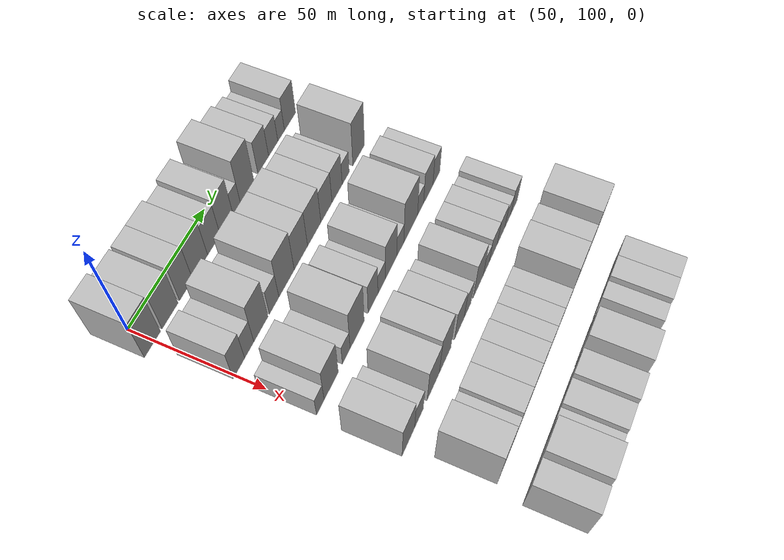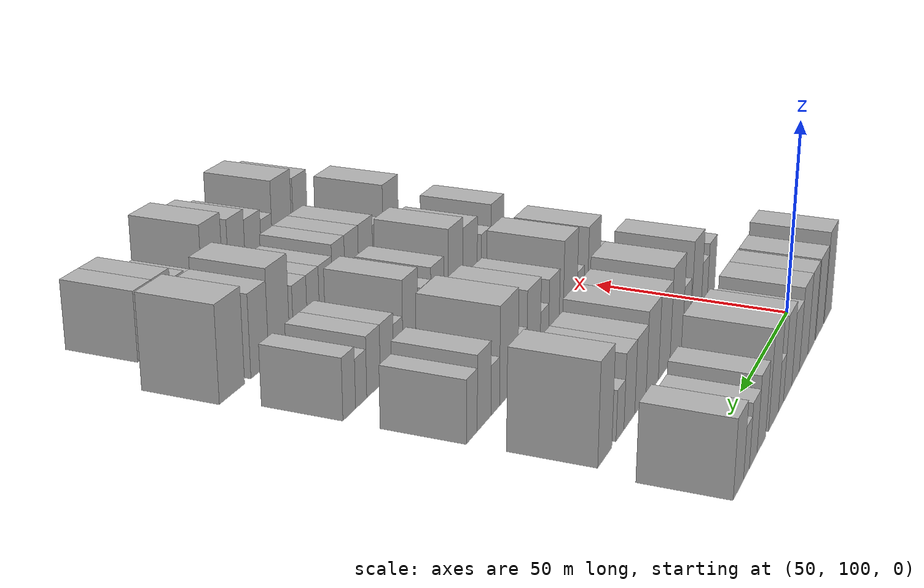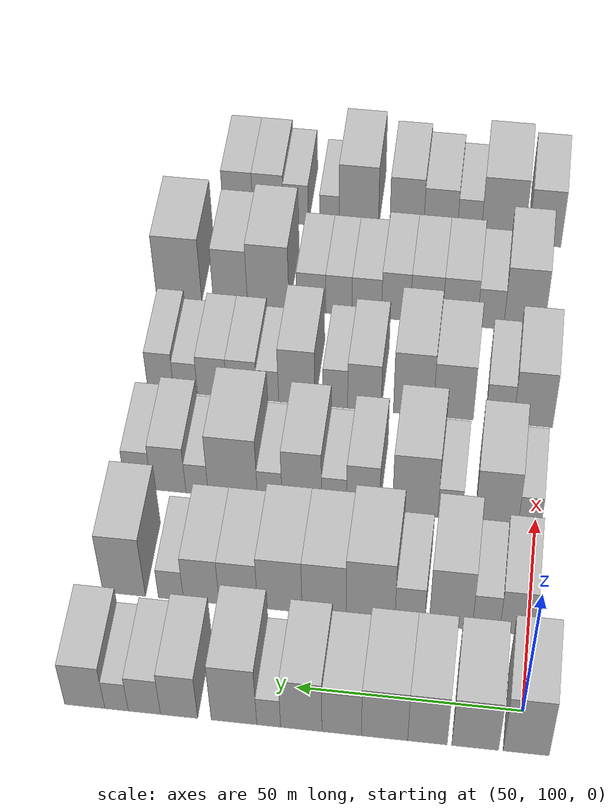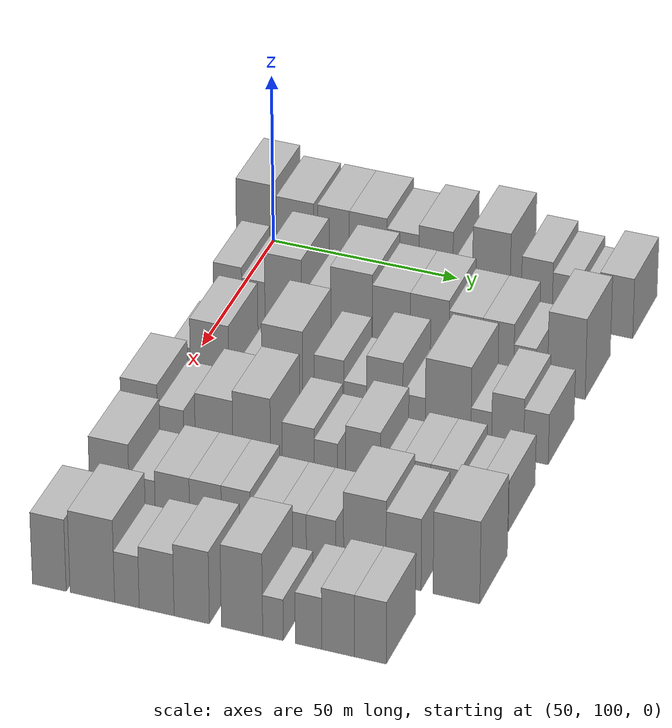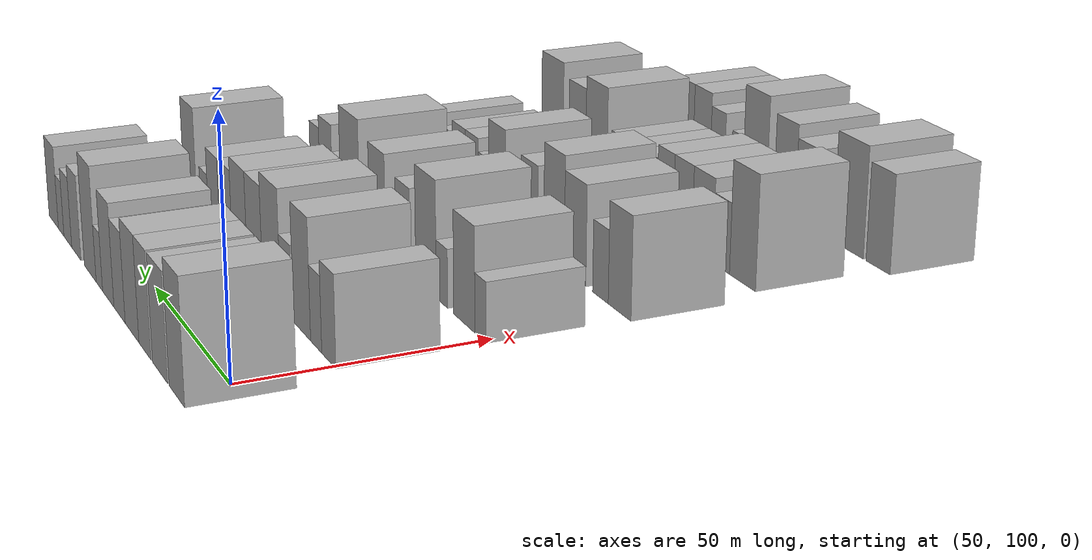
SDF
<sdf version="1.6">
 <world name="default">
  <model name="building_67">
   <static>1</static>
   <pose>50.0000 98.7237 0 0.000000 0.000000 0.000000</pose>
   <link name="link">
    <pose>0 0 12.00 0 0 0</pose>
    <collision name="collision"><geometry><box><size>20.0000 9.9362 24.0000</size></box></geometry></collision>
    <visual name="visual">
     <cast_shadows>0</cast_shadows>
     <geometry><box><size>20.0000 9.9362 24.0000</size></box></geometry>
     <material>
      <script>
       <uri>model://HANNAS_wall/materials/scripts</uri>
       <uri>model://HANNAS_wall/materials/textures</uri>
       <name>vrc/HANNAS_wall</name>
      </script>
     </material>
    </visual>
   </link>
  </model>
  <model name="building_68">
   <static>1</static>
   <pose>50.0000 109.7619 0 0.000000 0.000000 0.000000</pose>
   <link name="link">
    <pose>0 0 10.50 0 0 0</pose>
    <collision name="collision"><geometry><box><size>20.0000 10.1403 21.0000</size></box></geometry></collision>
    <visual name="visual">
     <cast_shadows>0</cast_shadows>
     <geometry><box><size>20.0000 10.1403 21.0000</size></box></geometry>
     <material>
      <script>
       <uri>model://HANNAS_wall/materials/scripts</uri>
       <uri>model://HANNAS_wall/materials/textures</uri>
       <name>vrc/HANNAS_wall</name>
      </script>
     </material>
    </visual>
   </link>
  </model>
  <model name="building_69">
   <static>1</static>
   <pose>50.0000 120.1276 0 0.000000 0.000000 0.000000</pose>
   <link name="link">
    <pose>0 0 10.50 0 0 0</pose>
    <collision name="collision"><geometry><box><size>20.0000 8.5910 21.0000</size></box></geometry></collision>
    <visual name="visual">
     <cast_shadows>0</cast_shadows>
     <geometry><box><size>20.0000 8.5910 21.0000</size></box></geometry>
     <material>
      <script>
       <uri>model://HANNAS_wall/materials/scripts</uri>
       <uri>model://HANNAS_wall/materials/textures</uri>
       <name>vrc/HANNAS_wall</name>
      </script>
     </material>
    </visual>
   </link>
  </model>
  <model name="building_70">
   <static>1</static>
   <pose>50.0000 129.4822 0 0.000000 0.000000 0.000000</pose>
   <link name="link">
    <pose>0 0 10.50 0 0 0</pose>
    <collision name="collision"><geometry><box><size>20.0000 10.1182 21.0000</size></box></geometry></collision>
    <visual name="visual">
     <cast_shadows>0</cast_shadows>
     <geometry><box><size>20.0000 10.1182 21.0000</size></box></geometry>
     <material>
      <script>
       <uri>model://HANNAS_wall/materials/scripts</uri>
       <uri>model://HANNAS_wall/materials/textures</uri>
       <name>vrc/HANNAS_wall</name>
      </script>
     </material>
    </visual>
   </link>
  </model>
  <model name="building_71">
   <static>1</static>
   <pose>50.0000 138.8478 0 0.000000 0.000000 0.000000</pose>
   <link name="link">
    <pose>0 0 9.00 0 0 0</pose>
    <collision name="collision"><geometry><box><size>20.0000 8.6132 18.0000</size></box></geometry></collision>
    <visual name="visual">
     <cast_shadows>0</cast_shadows>
     <geometry><box><size>20.0000 8.6132 18.0000</size></box></geometry>
     <material>
      <script>
       <uri>model://HANNAS_wall/materials/scripts</uri>
       <uri>model://HANNAS_wall/materials/textures</uri>
       <name>vrc/HANNAS_wall</name>
      </script>
     </material>
    </visual>
   </link>
  </model>
  <model name="building_72">
   <static>1</static>
   <pose>50.0000 147.6921 0 0.000000 0.000000 0.000000</pose>
   <link name="link">
    <pose>0 0 10.50 0 0 0</pose>
    <collision name="collision"><geometry><box><size>20.0000 9.0753 21.0000</size></box></geometry></collision>
    <visual name="visual">
     <cast_shadows>0</cast_shadows>
     <geometry><box><size>20.0000 9.0753 21.0000</size></box></geometry>
     <material>
      <script>
       <uri>model://HANNAS_wall/materials/scripts</uri>
       <uri>model://HANNAS_wall/materials/textures</uri>
       <name>vrc/HANNAS_wall</name>
      </script>
     </material>
    </visual>
   </link>
  </model>
  <model name="building_73">
   <static>1</static>
   <pose>50.0000 154.8513 0 0.000000 0.000000 0.000000</pose>
   <link name="link">
    <pose>0 0 6.00 0 0 0</pose>
    <collision name="collision"><geometry><box><size>20.0000 5.2431 12.0000</size></box></geometry></collision>
    <visual name="visual">
     <cast_shadows>0</cast_shadows>
     <geometry><box><size>20.0000 5.2431 12.0000</size></box></geometry>
     <material>
      <script>
       <uri>model://HANNAS_wall/materials/scripts</uri>
       <uri>model://HANNAS_wall/materials/textures</uri>
       <name>vrc/HANNAS_wall</name>
      </script>
     </material>
    </visual>
   </link>
  </model>
  <model name="building_74">
   <static>1</static>
   <pose>50.0000 162.4945 0 0.000000 0.000000 0.000000</pose>
   <link name="link">
    <pose>0 0 12.00 0 0 0</pose>
    <collision name="collision"><geometry><box><size>20.0000 10.0434 24.0000</size></box></geometry></collision>
    <visual name="visual">
     <cast_shadows>0</cast_shadows>
     <geometry><box><size>20.0000 10.0434 24.0000</size></box></geometry>
     <material>
      <script>
       <uri>model://HANNAS_wall/materials/scripts</uri>
       <uri>model://HANNAS_wall/materials/textures</uri>
       <name>vrc/HANNAS_wall</name>
      </script>
     </material>
    </visual>
   </link>
  </model>
  <model name="building_75">
   <static>1</static>
   <pose>50.0000 174.6314 0 0.000000 0.000000 0.000000</pose>
   <link name="link">
    <pose>0 0 9.00 0 0 0</pose>
    <collision name="collision"><geometry><box><size>20.0000 8.2305 18.0000</size></box></geometry></collision>
    <visual name="visual">
     <cast_shadows>0</cast_shadows>
     <geometry><box><size>20.0000 8.2305 18.0000</size></box></geometry>
     <material>
      <script>
       <uri>model://HANNAS_wall/materials/scripts</uri>
       <uri>model://HANNAS_wall/materials/textures</uri>
       <name>vrc/HANNAS_wall</name>
      </script>
     </material>
    </visual>
   </link>
  </model>
  <model name="building_76">
   <static>1</static>
   <pose>50.0000 182.3209 0 0.000000 0.000000 0.000000</pose>
   <link name="link">
    <pose>0 0 7.50 0 0 0</pose>
    <collision name="collision"><geometry><box><size>20.0000 7.1485 15.0000</size></box></geometry></collision>
    <visual name="visual">
     <cast_shadows>0</cast_shadows>
     <geometry><box><size>20.0000 7.1485 15.0000</size></box></geometry>
     <material>
      <script>
       <uri>model://HANNAS_wall/materials/scripts</uri>
       <uri>model://HANNAS_wall/materials/textures</uri>
       <name>vrc/HANNAS_wall</name>
      </script>
     </material>
    </visual>
   </link>
  </model>
  <model name="building_77">
   <static>1</static>
   <pose>50.0000 188.5051 0 0.000000 0.000000 0.000000</pose>
   <link name="link">
    <pose>0 0 6.00 0 0 0</pose>
    <collision name="collision"><geometry><box><size>20.0000 5.2199 12.0000</size></box></geometry></collision>
    <visual name="visual">
     <cast_shadows>0</cast_shadows>
     <geometry><box><size>20.0000 5.2199 12.0000</size></box></geometry>
     <material>
      <script>
       <uri>model://HANNAS_wall/materials/scripts</uri>
       <uri>model://HANNAS_wall/materials/textures</uri>
       <name>vrc/HANNAS_wall</name>
      </script>
     </material>
    </visual>
   </link>
  </model>
  <model name="building_78">
   <static>1</static>
   <pose>50.0000 195.5832 0 0.000000 0.000000 0.000000</pose>
   <link name="link">
    <pose>0 0 9.00 0 0 0</pose>
    <collision name="collision"><geometry><box><size>20.0000 8.9364 18.0000</size></box></geometry></collision>
    <visual name="visual">
     <cast_shadows>0</cast_shadows>
     <geometry><box><size>20.0000 8.9364 18.0000</size></box></geometry>
     <material>
      <script>
       <uri>model://HANNAS_wall/materials/scripts</uri>
       <uri>model://HANNAS_wall/materials/textures</uri>
       <name>vrc/HANNAS_wall</name>
      </script>
     </material>
    </visual>
   </link>
  </model>
  <model name="building_178">
   <static>1</static>
   <pose>79.0000 102.6184 0 0.000000 0.000000 0.000000</pose>
   <link name="link">
    <pose>0 0 9.00 0 0 0</pose>
    <collision name="collision"><geometry><box><size>20.0000 7.6009 18.0000</size></box></geometry></collision>
    <visual name="visual">
     <cast_shadows>0</cast_shadows>
     <geometry><box><size>20.0000 7.6009 18.0000</size></box></geometry>
     <material>
      <script>
       <uri>model://HANNAS_wall/materials/scripts</uri>
       <uri>model://HANNAS_wall/materials/textures</uri>
       <name>vrc/HANNAS_wall</name>
      </script>
     </material>
    </visual>
   </link>
  </model>
  <model name="building_179">
   <static>1</static>
   <pose>79.0000 109.5128 0 0.000000 0.000000 0.000000</pose>
   <link name="link">
    <pose>0 0 7.50 0 0 0</pose>
    <collision name="collision"><geometry><box><size>20.0000 6.1878 15.0000</size></box></geometry></collision>
    <visual name="visual">
     <cast_shadows>0</cast_shadows>
     <geometry><box><size>20.0000 6.1878 15.0000</size></box></geometry>
     <material>
      <script>
       <uri>model://HANNAS_wall/materials/scripts</uri>
       <uri>model://HANNAS_wall/materials/textures</uri>
       <name>vrc/HANNAS_wall</name>
      </script>
     </material>
    </visual>
   </link>
  </model>
  <model name="building_180">
   <static>1</static>
   <pose>79.0000 117.4778 0 0.000000 0.000000 0.000000</pose>
   <link name="link">
    <pose>0 0 12.00 0 0 0</pose>
    <collision name="collision"><geometry><box><size>20.0000 9.7422 24.0000</size></box></geometry></collision>
    <visual name="visual">
     <cast_shadows>0</cast_shadows>
     <geometry><box><size>20.0000 9.7422 24.0000</size></box></geometry>
     <material>
      <script>
       <uri>model://HANNAS_wall/materials/scripts</uri>
       <uri>model://HANNAS_wall/materials/textures</uri>
       <name>vrc/HANNAS_wall</name>
      </script>
     </material>
    </visual>
   </link>
  </model>
  <model name="building_181">
   <static>1</static>
   <pose>79.0000 126.7188 0 0.000000 0.000000 0.000000</pose>
   <link name="link">
    <pose>0 0 7.50 0 0 0</pose>
    <collision name="collision"><geometry><box><size>20.0000 6.7398 15.0000</size></box></geometry></collision>
    <visual name="visual">
     <cast_shadows>0</cast_shadows>
     <geometry><box><size>20.0000 6.7398 15.0000</size></box></geometry>
     <material>
      <script>
       <uri>model://HANNAS_wall/materials/scripts</uri>
       <uri>model://HANNAS_wall/materials/textures</uri>
       <name>vrc/HANNAS_wall</name>
      </script>
     </material>
    </visual>
   </link>
  </model>
  <model name="building_182">
   <static>1</static>
   <pose>79.0000 135.6520 0 0.000000 0.000000 0.000000</pose>
   <link name="link">
    <pose>0 0 12.00 0 0 0</pose>
    <collision name="collision"><geometry><box><size>20.0000 11.1267 24.0000</size></box></geometry></collision>
    <visual name="visual">
     <cast_shadows>0</cast_shadows>
     <geometry><box><size>20.0000 11.1267 24.0000</size></box></geometry>
     <material>
      <script>
       <uri>model://HANNAS_wall/materials/scripts</uri>
       <uri>model://HANNAS_wall/materials/textures</uri>
       <name>vrc/HANNAS_wall</name>
      </script>
     </material>
    </visual>
   </link>
  </model>
  <model name="building_183">
   <static>1</static>
   <pose>79.0000 146.2065 0 0.000000 0.000000 0.000000</pose>
   <link name="link">
    <pose>0 0 10.50 0 0 0</pose>
    <collision name="collision"><geometry><box><size>20.0000 9.9822 21.0000</size></box></geometry></collision>
    <visual name="visual">
     <cast_shadows>0</cast_shadows>
     <geometry><box><size>20.0000 9.9822 21.0000</size></box></geometry>
     <material>
      <script>
       <uri>model://HANNAS_wall/materials/scripts</uri>
       <uri>model://HANNAS_wall/materials/textures</uri>
       <name>vrc/HANNAS_wall</name>
      </script>
     </material>
    </visual>
   </link>
  </model>
  <model name="building_184">
   <static>1</static>
   <pose>79.0000 156.3046 0 0.000000 0.000000 0.000000</pose>
   <link name="link">
    <pose>0 0 10.50 0 0 0</pose>
    <collision name="collision"><geometry><box><size>20.0000 10.2140 21.0000</size></box></geometry></collision>
    <visual name="visual">
     <cast_shadows>0</cast_shadows>
     <geometry><box><size>20.0000 10.2140 21.0000</size></box></geometry>
     <material>
      <script>
       <uri>model://HANNAS_wall/materials/scripts</uri>
       <uri>model://HANNAS_wall/materials/textures</uri>
       <name>vrc/HANNAS_wall</name>
      </script>
     </material>
    </visual>
   </link>
  </model>
  <model name="building_185">
   <static>1</static>
   <pose>79.0000 165.8202 0 0.000000 0.000000 0.000000</pose>
   <link name="link">
    <pose>0 0 9.00 0 0 0</pose>
    <collision name="collision"><geometry><box><size>20.0000 8.8171 18.0000</size></box></geometry></collision>
    <visual name="visual">
     <cast_shadows>0</cast_shadows>
     <geometry><box><size>20.0000 8.8171 18.0000</size></box></geometry>
     <material>
      <script>
       <uri>model://HANNAS_wall/materials/scripts</uri>
       <uri>model://HANNAS_wall/materials/textures</uri>
       <name>vrc/HANNAS_wall</name>
      </script>
     </material>
    </visual>
   </link>
  </model>
  <model name="building_186">
   <static>1</static>
   <pose>79.0000 174.3302 0 0.000000 0.000000 0.000000</pose>
   <link name="link">
    <pose>0 0 9.00 0 0 0</pose>
    <collision name="collision"><geometry><box><size>20.0000 8.2030 18.0000</size></box></geometry></collision>
    <visual name="visual">
     <cast_shadows>0</cast_shadows>
     <geometry><box><size>20.0000 8.2030 18.0000</size></box></geometry>
     <material>
      <script>
       <uri>model://HANNAS_wall/materials/scripts</uri>
       <uri>model://HANNAS_wall/materials/textures</uri>
       <name>vrc/HANNAS_wall</name>
      </script>
     </material>
    </visual>
   </link>
  </model>
  <model name="building_187">
   <static>1</static>
   <pose>79.0000 181.3308 0 0.000000 0.000000 0.000000</pose>
   <link name="link">
    <pose>0 0 6.00 0 0 0</pose>
    <collision name="collision"><geometry><box><size>20.0000 5.7981 12.0000</size></box></geometry></collision>
    <visual name="visual">
     <cast_shadows>0</cast_shadows>
     <geometry><box><size>20.0000 5.7981 12.0000</size></box></geometry>
     <material>
      <script>
       <uri>model://HANNAS_wall/materials/scripts</uri>
       <uri>model://HANNAS_wall/materials/textures</uri>
       <name>vrc/HANNAS_wall</name>
      </script>
     </material>
    </visual>
   </link>
  </model>
  <model name="building_188">
   <static>1</static>
   <pose>79.0000 192.1509 0 0.000000 0.000000 0.000000</pose>
   <link name="link">
    <pose>0 0 12.00 0 0 0</pose>
    <collision name="collision"><geometry><box><size>20.0000 9.8422 24.0000</size></box></geometry></collision>
    <visual name="visual">
     <cast_shadows>0</cast_shadows>
     <geometry><box><size>20.0000 9.8422 24.0000</size></box></geometry>
     <material>
      <script>
       <uri>model://HANNAS_wall/materials/scripts</uri>
       <uri>model://HANNAS_wall/materials/textures</uri>
       <name>vrc/HANNAS_wall</name>
      </script>
     </material>
    </visual>
   </link>
  </model>
  <model name="building_292">
   <static>1</static>
   <pose>108.0000 101.3259 0 0.000000 0.000000 0.000000</pose>
   <link name="link">
    <pose>0 0 6.00 0 0 0</pose>
    <collision name="collision"><geometry><box><size>20.0000 5.3046 12.0000</size></box></geometry></collision>
    <visual name="visual">
     <cast_shadows>0</cast_shadows>
     <geometry><box><size>20.0000 5.3046 12.0000</size></box></geometry>
     <material>
      <script>
       <uri>model://HANNAS_wall/materials/scripts</uri>
       <uri>model://HANNAS_wall/materials/textures</uri>
       <name>vrc/HANNAS_wall</name>
      </script>
     </material>
    </visual>
   </link>
  </model>
  <model name="building_293">
   <static>1</static>
   <pose>108.0000 109.0631 0 0.000000 0.000000 0.000000</pose>
   <link name="link">
    <pose>0 0 10.50 0 0 0</pose>
    <collision name="collision"><geometry><box><size>20.0000 10.1699 21.0000</size></box></geometry></collision>
    <visual name="visual">
     <cast_shadows>0</cast_shadows>
     <geometry><box><size>20.0000 10.1699 21.0000</size></box></geometry>
     <material>
      <script>
       <uri>model://HANNAS_wall/materials/scripts</uri>
       <uri>model://HANNAS_wall/materials/textures</uri>
       <name>vrc/HANNAS_wall</name>
      </script>
     </material>
    </visual>
   </link>
  </model>
  <model name="building_294">
   <static>1</static>
   <pose>108.0000 120.0068 0 0.000000 0.000000 0.000000</pose>
   <link name="link">
    <pose>0 0 6.00 0 0 0</pose>
    <collision name="collision"><geometry><box><size>20.0000 5.7175 12.0000</size></box></geometry></collision>
    <visual name="visual">
     <cast_shadows>0</cast_shadows>
     <geometry><box><size>20.0000 5.7175 12.0000</size></box></geometry>
     <material>
      <script>
       <uri>model://HANNAS_wall/materials/scripts</uri>
       <uri>model://HANNAS_wall/materials/textures</uri>
       <name>vrc/HANNAS_wall</name>
      </script>
     </material>
    </visual>
   </link>
  </model>
  <model name="building_295">
   <static>1</static>
   <pose>108.0000 128.2154 0 0.000000 0.000000 0.000000</pose>
   <link name="link">
    <pose>0 0 12.00 0 0 0</pose>
    <collision name="collision"><geometry><box><size>20.0000 10.6997 24.0000</size></box></geometry></collision>
    <visual name="visual">
     <cast_shadows>0</cast_shadows>
     <geometry><box><size>20.0000 10.6997 24.0000</size></box></geometry>
     <material>
      <script>
       <uri>model://HANNAS_wall/materials/scripts</uri>
       <uri>model://HANNAS_wall/materials/textures</uri>
       <name>vrc/HANNAS_wall</name>
      </script>
     </material>
    </visual>
   </link>
  </model>
  <model name="building_296">
   <static>1</static>
   <pose>108.0000 140.4504 0 0.000000 0.000000 0.000000</pose>
   <link name="link">
    <pose>0 0 9.00 0 0 0</pose>
    <collision name="collision"><geometry><box><size>20.0000 7.7704 18.0000</size></box></geometry></collision>
    <visual name="visual">
     <cast_shadows>0</cast_shadows>
     <geometry><box><size>20.0000 7.7704 18.0000</size></box></geometry>
     <material>
      <script>
       <uri>model://HANNAS_wall/materials/scripts</uri>
       <uri>model://HANNAS_wall/materials/textures</uri>
       <name>vrc/HANNAS_wall</name>
      </script>
     </material>
    </visual>
   </link>
  </model>
  <model name="building_297">
   <static>1</static>
   <pose>108.0000 147.3112 0 0.000000 0.000000 0.000000</pose>
   <link name="link">
    <pose>0 0 6.00 0 0 0</pose>
    <collision name="collision"><geometry><box><size>20.0000 5.9511 12.0000</size></box></geometry></collision>
    <visual name="visual">
     <cast_shadows>0</cast_shadows>
     <geometry><box><size>20.0000 5.9511 12.0000</size></box></geometry>
     <material>
      <script>
       <uri>model://HANNAS_wall/materials/scripts</uri>
       <uri>model://HANNAS_wall/materials/textures</uri>
       <name>vrc/HANNAS_wall</name>
      </script>
     </material>
    </visual>
   </link>
  </model>
  <model name="building_298">
   <static>1</static>
   <pose>108.0000 154.9870 0 0.000000 0.000000 0.000000</pose>
   <link name="link">
    <pose>0 0 10.50 0 0 0</pose>
    <collision name="collision"><geometry><box><size>20.0000 9.4005 21.0000</size></box></geometry></collision>
    <visual name="visual">
     <cast_shadows>0</cast_shadows>
     <geometry><box><size>20.0000 9.4005 21.0000</size></box></geometry>
     <material>
      <script>
       <uri>model://HANNAS_wall/materials/scripts</uri>
       <uri>model://HANNAS_wall/materials/textures</uri>
       <name>vrc/HANNAS_wall</name>
      </script>
     </material>
    </visual>
   </link>
  </model>
  <model name="building_299">
   <static>1</static>
   <pose>108.0000 162.6072 0 0.000000 0.000000 0.000000</pose>
   <link name="link">
    <pose>0 0 6.00 0 0 0</pose>
    <collision name="collision"><geometry><box><size>20.0000 5.8399 12.0000</size></box></geometry></collision>
    <visual name="visual">
     <cast_shadows>0</cast_shadows>
     <geometry><box><size>20.0000 5.8399 12.0000</size></box></geometry>
     <material>
      <script>
       <uri>model://HANNAS_wall/materials/scripts</uri>
       <uri>model://HANNAS_wall/materials/textures</uri>
       <name>vrc/HANNAS_wall</name>
      </script>
     </material>
    </visual>
   </link>
  </model>
  <model name="building_300">
   <static>1</static>
   <pose>108.0000 171.4204 0 0.000000 0.000000 0.000000</pose>
   <link name="link">
    <pose>0 0 12.00 0 0 0</pose>
    <collision name="collision"><geometry><box><size>20.0000 11.7866 24.0000</size></box></geometry></collision>
    <visual name="visual">
     <cast_shadows>0</cast_shadows>
     <geometry><box><size>20.0000 11.7866 24.0000</size></box></geometry>
     <material>
      <script>
       <uri>model://HANNAS_wall/materials/scripts</uri>
       <uri>model://HANNAS_wall/materials/textures</uri>
       <name>vrc/HANNAS_wall</name>
      </script>
     </material>
    </visual>
   </link>
  </model>
  <model name="building_301">
   <static>1</static>
   <pose>108.0000 179.9773 0 0.000000 0.000000 0.000000</pose>
   <link name="link">
    <pose>0 0 6.00 0 0 0</pose>
    <collision name="collision"><geometry><box><size>20.0000 5.3273 12.0000</size></box></geometry></collision>
    <visual name="visual">
     <cast_shadows>0</cast_shadows>
     <geometry><box><size>20.0000 5.3273 12.0000</size></box></geometry>
     <material>
      <script>
       <uri>model://HANNAS_wall/materials/scripts</uri>
       <uri>model://HANNAS_wall/materials/textures</uri>
       <name>vrc/HANNAS_wall</name>
      </script>
     </material>
    </visual>
   </link>
  </model>
  <model name="building_302">
   <static>1</static>
   <pose>108.0000 186.7719 0 0.000000 0.000000 0.000000</pose>
   <link name="link">
    <pose>0 0 9.00 0 0 0</pose>
    <collision name="collision"><geometry><box><size>20.0000 8.2618 18.0000</size></box></geometry></collision>
    <visual name="visual">
     <cast_shadows>0</cast_shadows>
     <geometry><box><size>20.0000 8.2618 18.0000</size></box></geometry>
     <material>
      <script>
       <uri>model://HANNAS_wall/materials/scripts</uri>
       <uri>model://HANNAS_wall/materials/textures</uri>
       <name>vrc/HANNAS_wall</name>
      </script>
     </material>
    </visual>
   </link>
  </model>
  <model name="building_303">
   <static>1</static>
   <pose>108.0000 194.0642 0 0.000000 0.000000 0.000000</pose>
   <link name="link">
    <pose>0 0 7.50 0 0 0</pose>
    <collision name="collision"><geometry><box><size>20.0000 6.3228 15.0000</size></box></geometry></collision>
    <visual name="visual">
     <cast_shadows>0</cast_shadows>
     <geometry><box><size>20.0000 6.3228 15.0000</size></box></geometry>
     <material>
      <script>
       <uri>model://HANNAS_wall/materials/scripts</uri>
       <uri>model://HANNAS_wall/materials/textures</uri>
       <name>vrc/HANNAS_wall</name>
      </script>
     </material>
    </visual>
   </link>
  </model>
  <model name="building_401">
   <static>1</static>
   <pose>137.0000 102.1666 0 0.000000 0.000000 0.000000</pose>
   <link name="link">
    <pose>0 0 10.50 0 0 0</pose>
    <collision name="collision"><geometry><box><size>20.0000 9.5321 21.0000</size></box></geometry></collision>
    <visual name="visual">
     <cast_shadows>0</cast_shadows>
     <geometry><box><size>20.0000 9.5321 21.0000</size></box></geometry>
     <material>
      <script>
       <uri>model://HANNAS_wall/materials/scripts</uri>
       <uri>model://HANNAS_wall/materials/textures</uri>
       <name>vrc/HANNAS_wall</name>
      </script>
     </material>
    </visual>
   </link>
  </model>
  <model name="building_402">
   <static>1</static>
   <pose>137.0000 110.3112 0 0.000000 0.000000 0.000000</pose>
   <link name="link">
    <pose>0 0 7.50 0 0 0</pose>
    <collision name="collision"><geometry><box><size>20.0000 6.7571 15.0000</size></box></geometry></collision>
    <visual name="visual">
     <cast_shadows>0</cast_shadows>
     <geometry><box><size>20.0000 6.7571 15.0000</size></box></geometry>
     <material>
      <script>
       <uri>model://HANNAS_wall/materials/scripts</uri>
       <uri>model://HANNAS_wall/materials/textures</uri>
       <name>vrc/HANNAS_wall</name>
      </script>
     </material>
    </visual>
   </link>
  </model>
  <model name="building_403">
   <static>1</static>
   <pose>137.0000 121.5773 0 0.000000 0.000000 0.000000</pose>
   <link name="link">
    <pose>0 0 10.50 0 0 0</pose>
    <collision name="collision"><geometry><box><size>20.0000 9.7750 21.0000</size></box></geometry></collision>
    <visual name="visual">
     <cast_shadows>0</cast_shadows>
     <geometry><box><size>20.0000 9.7750 21.0000</size></box></geometry>
     <material>
      <script>
       <uri>model://HANNAS_wall/materials/scripts</uri>
       <uri>model://HANNAS_wall/materials/textures</uri>
       <name>vrc/HANNAS_wall</name>
      </script>
     </material>
    </visual>
   </link>
  </model>
  <model name="building_404">
   <static>1</static>
   <pose>137.0000 131.3358 0 0.000000 0.000000 0.000000</pose>
   <link name="link">
    <pose>0 0 12.00 0 0 0</pose>
    <collision name="collision"><geometry><box><size>20.0000 9.7421 24.0000</size></box></geometry></collision>
    <visual name="visual">
     <cast_shadows>0</cast_shadows>
     <geometry><box><size>20.0000 9.7421 24.0000</size></box></geometry>
     <material>
      <script>
       <uri>model://HANNAS_wall/materials/scripts</uri>
       <uri>model://HANNAS_wall/materials/textures</uri>
       <name>vrc/HANNAS_wall</name>
      </script>
     </material>
    </visual>
   </link>
  </model>
  <model name="building_405">
   <static>1</static>
   <pose>137.0000 143.3232 0 0.000000 0.000000 0.000000</pose>
   <link name="link">
    <pose>0 0 9.00 0 0 0</pose>
    <collision name="collision"><geometry><box><size>20.0000 8.2328 18.0000</size></box></geometry></collision>
    <visual name="visual">
     <cast_shadows>0</cast_shadows>
     <geometry><box><size>20.0000 8.2328 18.0000</size></box></geometry>
     <material>
      <script>
       <uri>model://HANNAS_wall/materials/scripts</uri>
       <uri>model://HANNAS_wall/materials/textures</uri>
       <name>vrc/HANNAS_wall</name>
      </script>
     </material>
    </visual>
   </link>
  </model>
  <model name="building_406">
   <static>1</static>
   <pose>137.0000 150.4576 0 0.000000 0.000000 0.000000</pose>
   <link name="link">
    <pose>0 0 7.50 0 0 0</pose>
    <collision name="collision"><geometry><box><size>20.0000 6.0360 15.0000</size></box></geometry></collision>
    <visual name="visual">
     <cast_shadows>0</cast_shadows>
     <geometry><box><size>20.0000 6.0360 15.0000</size></box></geometry>
     <material>
      <script>
       <uri>model://HANNAS_wall/materials/scripts</uri>
       <uri>model://HANNAS_wall/materials/textures</uri>
       <name>vrc/HANNAS_wall</name>
      </script>
     </material>
    </visual>
   </link>
  </model>
  <model name="building_407">
   <static>1</static>
   <pose>137.0000 159.9512 0 0.000000 0.000000 0.000000</pose>
   <link name="link">
    <pose>0 0 10.50 0 0 0</pose>
    <collision name="collision"><geometry><box><size>20.0000 8.9512 21.0000</size></box></geometry></collision>
    <visual name="visual">
     <cast_shadows>0</cast_shadows>
     <geometry><box><size>20.0000 8.9512 21.0000</size></box></geometry>
     <material>
      <script>
       <uri>model://HANNAS_wall/materials/scripts</uri>
       <uri>model://HANNAS_wall/materials/textures</uri>
       <name>vrc/HANNAS_wall</name>
      </script>
     </material>
    </visual>
   </link>
  </model>
  <model name="building_408">
   <static>1</static>
   <pose>137.0000 167.1158 0 0.000000 0.000000 0.000000</pose>
   <link name="link">
    <pose>0 0 6.00 0 0 0</pose>
    <collision name="collision"><geometry><box><size>20.0000 5.3780 12.0000</size></box></geometry></collision>
    <visual name="visual">
     <cast_shadows>0</cast_shadows>
     <geometry><box><size>20.0000 5.3780 12.0000</size></box></geometry>
     <material>
      <script>
       <uri>model://HANNAS_wall/materials/scripts</uri>
       <uri>model://HANNAS_wall/materials/textures</uri>
       <name>vrc/HANNAS_wall</name>
      </script>
     </material>
    </visual>
   </link>
  </model>
  <model name="building_409">
   <static>1</static>
   <pose>137.0000 173.5081 0 0.000000 0.000000 0.000000</pose>
   <link name="link">
    <pose>0 0 7.50 0 0 0</pose>
    <collision name="collision"><geometry><box><size>20.0000 7.4065 15.0000</size></box></geometry></collision>
    <visual name="visual">
     <cast_shadows>0</cast_shadows>
     <geometry><box><size>20.0000 7.4065 15.0000</size></box></geometry>
     <material>
      <script>
       <uri>model://HANNAS_wall/materials/scripts</uri>
       <uri>model://HANNAS_wall/materials/textures</uri>
       <name>vrc/HANNAS_wall</name>
      </script>
     </material>
    </visual>
   </link>
  </model>
  <model name="building_410">
   <static>1</static>
   <pose>137.0000 180.8856 0 0.000000 0.000000 0.000000</pose>
   <link name="link">
    <pose>0 0 7.50 0 0 0</pose>
    <collision name="collision"><geometry><box><size>20.0000 7.3486 15.0000</size></box></geometry></collision>
    <visual name="visual">
     <cast_shadows>0</cast_shadows>
     <geometry><box><size>20.0000 7.3486 15.0000</size></box></geometry>
     <material>
      <script>
       <uri>model://HANNAS_wall/materials/scripts</uri>
       <uri>model://HANNAS_wall/materials/textures</uri>
       <name>vrc/HANNAS_wall</name>
      </script>
     </material>
    </visual>
   </link>
  </model>
  <model name="building_411">
   <static>1</static>
   <pose>137.0000 187.5009 0 0.000000 0.000000 0.000000</pose>
   <link name="link">
    <pose>0 0 6.00 0 0 0</pose>
    <collision name="collision"><geometry><box><size>20.0000 5.8820 12.0000</size></box></geometry></collision>
    <visual name="visual">
     <cast_shadows>0</cast_shadows>
     <geometry><box><size>20.0000 5.8820 12.0000</size></box></geometry>
     <material>
      <script>
       <uri>model://HANNAS_wall/materials/scripts</uri>
       <uri>model://HANNAS_wall/materials/textures</uri>
       <name>vrc/HANNAS_wall</name>
      </script>
     </material>
    </visual>
   </link>
  </model>
  <model name="building_412">
   <static>1</static>
   <pose>137.0000 193.6802 0 0.000000 0.000000 0.000000</pose>
   <link name="link">
    <pose>0 0 7.50 0 0 0</pose>
    <collision name="collision"><geometry><box><size>20.0000 6.4766 15.0000</size></box></geometry></collision>
    <visual name="visual">
     <cast_shadows>0</cast_shadows>
     <geometry><box><size>20.0000 6.4766 15.0000</size></box></geometry>
     <material>
      <script>
       <uri>model://HANNAS_wall/materials/scripts</uri>
       <uri>model://HANNAS_wall/materials/textures</uri>
       <name>vrc/HANNAS_wall</name>
      </script>
     </material>
    </visual>
   </link>
  </model>
  <model name="building_521">
   <static>1</static>
   <pose>166.0000 106.1323 0 0.000000 0.000000 0.000000</pose>
   <link name="link">
    <pose>0 0 12.00 0 0 0</pose>
    <collision name="collision"><geometry><box><size>20.0000 10.1632 24.0000</size></box></geometry></collision>
    <visual name="visual">
     <cast_shadows>0</cast_shadows>
     <geometry><box><size>20.0000 10.1632 24.0000</size></box></geometry>
     <material>
      <script>
       <uri>model://HANNAS_wall/materials/scripts</uri>
       <uri>model://HANNAS_wall/materials/textures</uri>
       <name>vrc/HANNAS_wall</name>
      </script>
     </material>
    </visual>
   </link>
  </model>
  <model name="building_522">
   <static>1</static>
   <pose>166.0000 114.5329 0 0.000000 0.000000 0.000000</pose>
   <link name="link">
    <pose>0 0 7.50 0 0 0</pose>
    <collision name="collision"><geometry><box><size>20.0000 6.6379 15.0000</size></box></geometry></collision>
    <visual name="visual">
     <cast_shadows>0</cast_shadows>
     <geometry><box><size>20.0000 6.6379 15.0000</size></box></geometry>
     <material>
      <script>
       <uri>model://HANNAS_wall/materials/scripts</uri>
       <uri>model://HANNAS_wall/materials/textures</uri>
       <name>vrc/HANNAS_wall</name>
      </script>
     </material>
    </visual>
   </link>
  </model>
  <model name="building_523">
   <static>1</static>
   <pose>166.0000 122.2529 0 0.000000 0.000000 0.000000</pose>
   <link name="link">
    <pose>0 0 9.00 0 0 0</pose>
    <collision name="collision"><geometry><box><size>20.0000 8.8021 18.0000</size></box></geometry></collision>
    <visual name="visual">
     <cast_shadows>0</cast_shadows>
     <geometry><box><size>20.0000 8.8021 18.0000</size></box></geometry>
     <material>
      <script>
       <uri>model://HANNAS_wall/materials/scripts</uri>
       <uri>model://HANNAS_wall/materials/textures</uri>
       <name>vrc/HANNAS_wall</name>
      </script>
     </material>
    </visual>
   </link>
  </model>
  <model name="building_524">
   <static>1</static>
   <pose>166.0000 130.7304 0 0.000000 0.000000 0.000000</pose>
   <link name="link">
    <pose>0 0 9.00 0 0 0</pose>
    <collision name="collision"><geometry><box><size>20.0000 8.1530 18.0000</size></box></geometry></collision>
    <visual name="visual">
     <cast_shadows>0</cast_shadows>
     <geometry><box><size>20.0000 8.1530 18.0000</size></box></geometry>
     <material>
      <script>
       <uri>model://HANNAS_wall/materials/scripts</uri>
       <uri>model://HANNAS_wall/materials/textures</uri>
       <name>vrc/HANNAS_wall</name>
      </script>
     </material>
    </visual>
   </link>
  </model>
  <model name="building_525">
   <static>1</static>
   <pose>166.0000 138.4529 0 0.000000 0.000000 0.000000</pose>
   <link name="link">
    <pose>0 0 9.00 0 0 0</pose>
    <collision name="collision"><geometry><box><size>20.0000 7.2920 18.0000</size></box></geometry></collision>
    <visual name="visual">
     <cast_shadows>0</cast_shadows>
     <geometry><box><size>20.0000 7.2920 18.0000</size></box></geometry>
     <material>
      <script>
       <uri>model://HANNAS_wall/materials/scripts</uri>
       <uri>model://HANNAS_wall/materials/textures</uri>
       <name>vrc/HANNAS_wall</name>
      </script>
     </material>
    </visual>
   </link>
  </model>
  <model name="building_526">
   <static>1</static>
   <pose>166.0000 145.8486 0 0.000000 0.000000 0.000000</pose>
   <link name="link">
    <pose>0 0 7.50 0 0 0</pose>
    <collision name="collision"><geometry><box><size>20.0000 7.4994 15.0000</size></box></geometry></collision>
    <visual name="visual">
     <cast_shadows>0</cast_shadows>
     <geometry><box><size>20.0000 7.4994 15.0000</size></box></geometry>
     <material>
      <script>
       <uri>model://HANNAS_wall/materials/scripts</uri>
       <uri>model://HANNAS_wall/materials/textures</uri>
       <name>vrc/HANNAS_wall</name>
      </script>
     </material>
    </visual>
   </link>
  </model>
  <model name="building_527">
   <static>1</static>
   <pose>166.0000 152.9374 0 0.000000 0.000000 0.000000</pose>
   <link name="link">
    <pose>0 0 7.50 0 0 0</pose>
    <collision name="collision"><geometry><box><size>20.0000 6.6781 15.0000</size></box></geometry></collision>
    <visual name="visual">
     <cast_shadows>0</cast_shadows>
     <geometry><box><size>20.0000 6.6781 15.0000</size></box></geometry>
     <material>
      <script>
       <uri>model://HANNAS_wall/materials/scripts</uri>
       <uri>model://HANNAS_wall/materials/textures</uri>
       <name>vrc/HANNAS_wall</name>
      </script>
     </material>
    </visual>
   </link>
  </model>
  <model name="building_528">
   <static>1</static>
   <pose>166.0000 159.9775 0 0.000000 0.000000 0.000000</pose>
   <link name="link">
    <pose>0 0 7.50 0 0 0</pose>
    <collision name="collision"><geometry><box><size>20.0000 7.4021 15.0000</size></box></geometry></collision>
    <visual name="visual">
     <cast_shadows>0</cast_shadows>
     <geometry><box><size>20.0000 7.4021 15.0000</size></box></geometry>
     <material>
      <script>
       <uri>model://HANNAS_wall/materials/scripts</uri>
       <uri>model://HANNAS_wall/materials/textures</uri>
       <name>vrc/HANNAS_wall</name>
      </script>
     </material>
    </visual>
   </link>
  </model>
  <model name="building_529">
   <static>1</static>
   <pose>166.0000 171.0019 0 0.000000 0.000000 0.000000</pose>
   <link name="link">
    <pose>0 0 12.00 0 0 0</pose>
    <collision name="collision"><geometry><box><size>20.0000 10.6469 24.0000</size></box></geometry></collision>
    <visual name="visual">
     <cast_shadows>0</cast_shadows>
     <geometry><box><size>20.0000 10.6469 24.0000</size></box></geometry>
     <material>
      <script>
       <uri>model://HANNAS_wall/materials/scripts</uri>
       <uri>model://HANNAS_wall/materials/textures</uri>
       <name>vrc/HANNAS_wall</name>
      </script>
     </material>
    </visual>
   </link>
  </model>
  <model name="building_530">
   <static>1</static>
   <pose>166.0000 180.7248 0 0.000000 0.000000 0.000000</pose>
   <link name="link">
    <pose>0 0 10.50 0 0 0</pose>
    <collision name="collision"><geometry><box><size>20.0000 8.7987 21.0000</size></box></geometry></collision>
    <visual name="visual">
     <cast_shadows>0</cast_shadows>
     <geometry><box><size>20.0000 8.7987 21.0000</size></box></geometry>
     <material>
      <script>
       <uri>model://HANNAS_wall/materials/scripts</uri>
       <uri>model://HANNAS_wall/materials/textures</uri>
       <name>vrc/HANNAS_wall</name>
      </script>
     </material>
    </visual>
   </link>
  </model>
  <model name="building_531">
   <static>1</static>
   <pose>166.0000 193.9412 0 0.000000 0.000000 0.000000</pose>
   <link name="link">
    <pose>0 0 12.00 0 0 0</pose>
    <collision name="collision"><geometry><box><size>20.0000 11.6341 24.0000</size></box></geometry></collision>
    <visual name="visual">
     <cast_shadows>0</cast_shadows>
     <geometry><box><size>20.0000 11.6341 24.0000</size></box></geometry>
     <material>
      <script>
       <uri>model://HANNAS_wall/materials/scripts</uri>
       <uri>model://HANNAS_wall/materials/textures</uri>
       <name>vrc/HANNAS_wall</name>
      </script>
     </material>
    </visual>
   </link>
  </model>
  <model name="building_639">
   <static>1</static>
   <pose>195.0000 102.4466 0 0.000000 0.000000 0.000000</pose>
   <link name="link">
    <pose>0 0 10.50 0 0 0</pose>
    <collision name="collision"><geometry><box><size>20.0000 8.6003 21.0000</size></box></geometry></collision>
    <visual name="visual">
     <cast_shadows>0</cast_shadows>
     <geometry><box><size>20.0000 8.6003 21.0000</size></box></geometry>
     <material>
      <script>
       <uri>model://HANNAS_wall/materials/scripts</uri>
       <uri>model://HANNAS_wall/materials/textures</uri>
       <name>vrc/HANNAS_wall</name>
      </script>
     </material>
    </visual>
   </link>
  </model>
  <model name="building_640">
   <static>1</static>
   <pose>195.0000 113.3970 0 0.000000 0.000000 0.000000</pose>
   <link name="link">
    <pose>0 0 12.00 0 0 0</pose>
    <collision name="collision"><geometry><box><size>20.0000 11.3006 24.0000</size></box></geometry></collision>
    <visual name="visual">
     <cast_shadows>0</cast_shadows>
     <geometry><box><size>20.0000 11.3006 24.0000</size></box></geometry>
     <material>
      <script>
       <uri>model://HANNAS_wall/materials/scripts</uri>
       <uri>model://HANNAS_wall/materials/textures</uri>
       <name>vrc/HANNAS_wall</name>
      </script>
     </material>
    </visual>
   </link>
  </model>
  <model name="building_641">
   <static>1</static>
   <pose>195.0000 122.1674 0 0.000000 0.000000 0.000000</pose>
   <link name="link">
    <pose>0 0 7.50 0 0 0</pose>
    <collision name="collision"><geometry><box><size>20.0000 6.2402 15.0000</size></box></geometry></collision>
    <visual name="visual">
     <cast_shadows>0</cast_shadows>
     <geometry><box><size>20.0000 6.2402 15.0000</size></box></geometry>
     <material>
      <script>
       <uri>model://HANNAS_wall/materials/scripts</uri>
       <uri>model://HANNAS_wall/materials/textures</uri>
       <name>vrc/HANNAS_wall</name>
      </script>
     </material>
    </visual>
   </link>
  </model>
  <model name="building_642">
   <static>1</static>
   <pose>195.0000 129.6821 0 0.000000 0.000000 0.000000</pose>
   <link name="link">
    <pose>0 0 9.00 0 0 0</pose>
    <collision name="collision"><geometry><box><size>20.0000 8.7891 18.0000</size></box></geometry></collision>
    <visual name="visual">
     <cast_shadows>0</cast_shadows>
     <geometry><box><size>20.0000 8.7891 18.0000</size></box></geometry>
     <material>
      <script>
       <uri>model://HANNAS_wall/materials/scripts</uri>
       <uri>model://HANNAS_wall/materials/textures</uri>
       <name>vrc/HANNAS_wall</name>
      </script>
     </material>
    </visual>
   </link>
  </model>
  <model name="building_643">
   <static>1</static>
   <pose>195.0000 138.5171 0 0.000000 0.000000 0.000000</pose>
   <link name="link">
    <pose>0 0 10.50 0 0 0</pose>
    <collision name="collision"><geometry><box><size>20.0000 8.8809 21.0000</size></box></geometry></collision>
    <visual name="visual">
     <cast_shadows>0</cast_shadows>
     <geometry><box><size>20.0000 8.8809 21.0000</size></box></geometry>
     <material>
      <script>
       <uri>model://HANNAS_wall/materials/scripts</uri>
       <uri>model://HANNAS_wall/materials/textures</uri>
       <name>vrc/HANNAS_wall</name>
      </script>
     </material>
    </visual>
   </link>
  </model>
  <model name="building_644">
   <static>1</static>
   <pose>195.0000 151.1198 0 0.000000 0.000000 0.000000</pose>
   <link name="link">
    <pose>0 0 12.00 0 0 0</pose>
    <collision name="collision"><geometry><box><size>20.0000 10.3245 24.0000</size></box></geometry></collision>
    <visual name="visual">
     <cast_shadows>0</cast_shadows>
     <geometry><box><size>20.0000 10.3245 24.0000</size></box></geometry>
     <material>
      <script>
       <uri>model://HANNAS_wall/materials/scripts</uri>
       <uri>model://HANNAS_wall/materials/textures</uri>
       <name>vrc/HANNAS_wall</name>
      </script>
     </material>
    </visual>
   </link>
  </model>
  <model name="building_645">
   <static>1</static>
   <pose>195.0000 158.8415 0 0.000000 0.000000 0.000000</pose>
   <link name="link">
    <pose>0 0 6.00 0 0 0</pose>
    <collision name="collision"><geometry><box><size>20.0000 5.1189 12.0000</size></box></geometry></collision>
    <visual name="visual">
     <cast_shadows>0</cast_shadows>
     <geometry><box><size>20.0000 5.1189 12.0000</size></box></geometry>
     <material>
      <script>
       <uri>model://HANNAS_wall/materials/scripts</uri>
       <uri>model://HANNAS_wall/materials/textures</uri>
       <name>vrc/HANNAS_wall</name>
      </script>
     </material>
    </visual>
   </link>
  </model>
  <model name="building_646">
   <static>1</static>
   <pose>195.0000 167.6690 0 0.000000 0.000000 0.000000</pose>
   <link name="link">
    <pose>0 0 7.50 0 0 0</pose>
    <collision name="collision"><geometry><box><size>20.0000 6.5362 15.0000</size></box></geometry></collision>
    <visual name="visual">
     <cast_shadows>0</cast_shadows>
     <geometry><box><size>20.0000 6.5362 15.0000</size></box></geometry>
     <material>
      <script>
       <uri>model://HANNAS_wall/materials/scripts</uri>
       <uri>model://HANNAS_wall/materials/textures</uri>
       <name>vrc/HANNAS_wall</name>
      </script>
     </material>
    </visual>
   </link>
  </model>
  <model name="building_647">
   <static>1</static>
   <pose>195.0000 174.9854 0 0.000000 0.000000 0.000000</pose>
   <link name="link">
    <pose>0 0 9.00 0 0 0</pose>
    <collision name="collision"><geometry><box><size>20.0000 8.0965 18.0000</size></box></geometry></collision>
    <visual name="visual">
     <cast_shadows>0</cast_shadows>
     <geometry><box><size>20.0000 8.0965 18.0000</size></box></geometry>
     <material>
      <script>
       <uri>model://HANNAS_wall/materials/scripts</uri>
       <uri>model://HANNAS_wall/materials/textures</uri>
       <name>vrc/HANNAS_wall</name>
      </script>
     </material>
    </visual>
   </link>
  </model>
  <model name="building_648">
   <static>1</static>
   <pose>195.0000 182.9878 0 0.000000 0.000000 0.000000</pose>
   <link name="link">
    <pose>0 0 9.00 0 0 0</pose>
    <collision name="collision"><geometry><box><size>20.0000 7.9084 18.0000</size></box></geometry></collision>
    <visual name="visual">
     <cast_shadows>0</cast_shadows>
     <geometry><box><size>20.0000 7.9084 18.0000</size></box></geometry>
     <material>
      <script>
       <uri>model://HANNAS_wall/materials/scripts</uri>
       <uri>model://HANNAS_wall/materials/textures</uri>
       <name>vrc/HANNAS_wall</name>
      </script>
     </material>
    </visual>
   </link>
  </model>
 </world>
</sdf>
